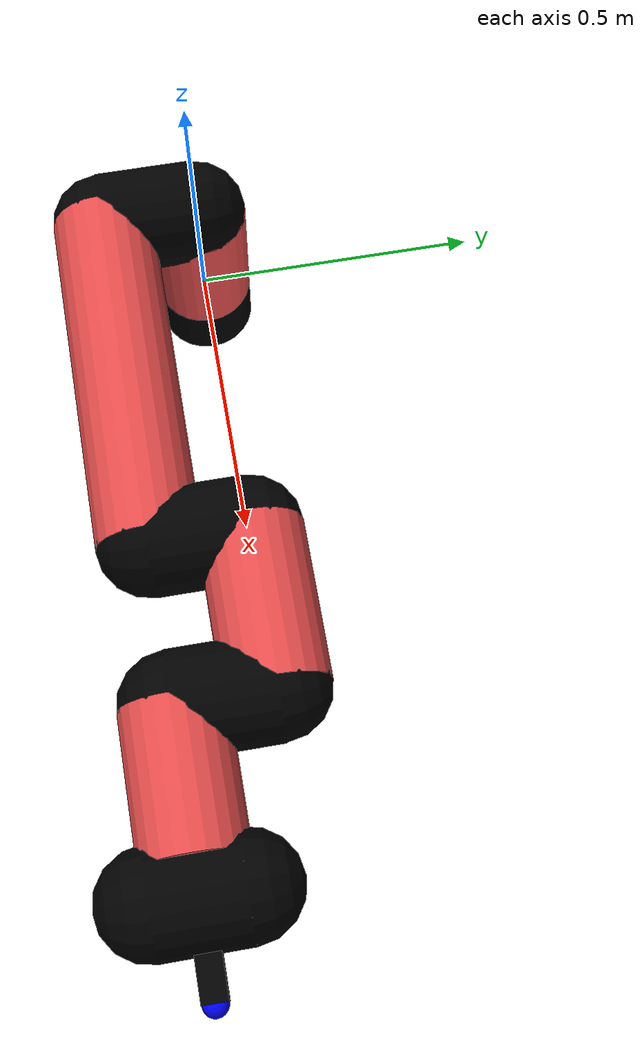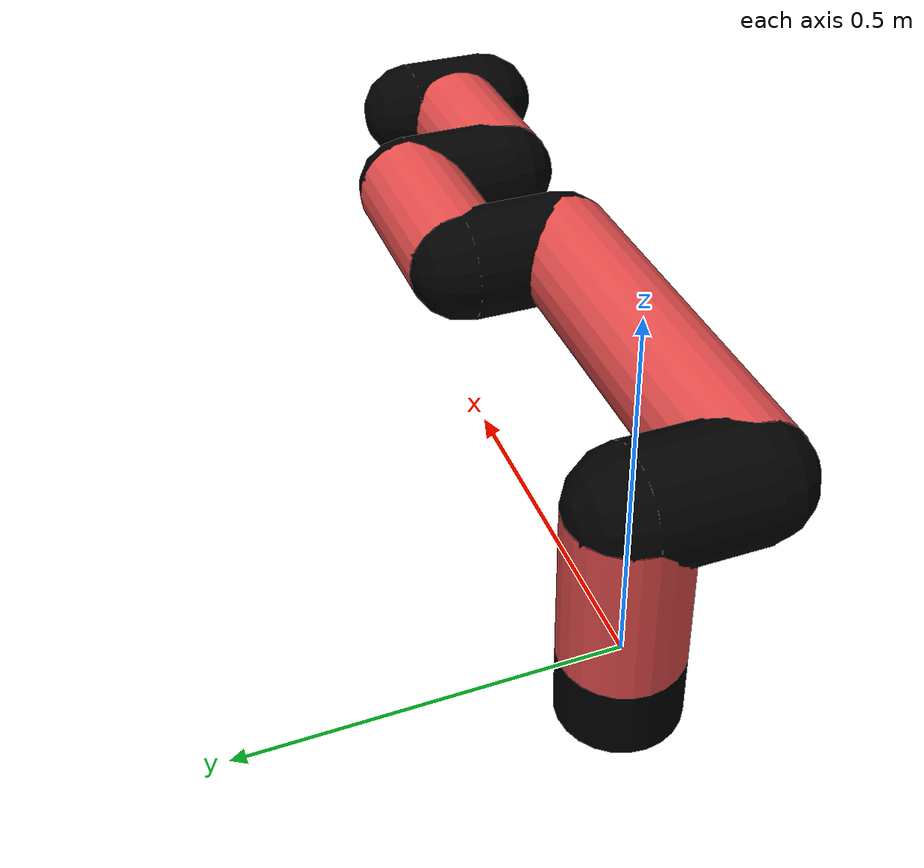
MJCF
<mujoco model="manipulator">
		<compiler angle="degree" coordinate="local" inertiafromgeom="auto" meshdir="meshes/"/>
		<option gravity="0 0 0" integrator="RK4" iterations="30" timestep="0.01"/>

		<default>
		<joint armature="1" limited="true" stiffness="10" damping="15" frictionloss="5.0"/>
		<geom conaffinity="1" condim="3" contype="1" friction=".5 .1 .1" margin="0.002"/>
		<motor ctrllimited="true"/>
		<position ctrllimited="true"/>
		</default>

		<asset>
		<texture builtin="gradient" height="100" rgb1="1.0 1.0 1.0" rgb2="1.0 1.0 1.0" type="skybox" width="100"/>
		<texture builtin="flat" height="32" name="arm_tex" rgb1="0.9 0.3 0.3" type="2d" width="32"/>
		<texture builtin="flat" height="32" name="gripper_tex" rgb1="0.0 0.0 0.0" type="cube" width="32"/>

		<material name="arm_mat" shininess="0.1" specular="0.1" texture="arm_tex"/>
		<material name="gripper_mat" shininess="1" specular="1" texture="gripper_tex"/>
		</asset>

		<worldbody>
		<light cutoff="45" diffuse=".8 .8 .8" dir="0 0.16 -1" directional="false" name="light" pos="0 -2.0 8.0" specular="0.3 0.3 0.3"/>

		<body name="base_link" pos="0 0 -0.1">
		<geom fromto="0 0 0 0 0 0.1" material="arm_mat" name="base_link" rgba="0.0 0.0 0.0 1" size="0.085" type="cylinder"/>
		</body>

		<body name="l1" pos="0 0 0">
<geom fromto="0 0 0 0 0 0.23" material="arm_mat" name="l1" rgba="0.9 0.3 0.3 1" size="0.085" type="cylinder"/>
<geom fromto="0 0 0.23 0 -0.16 0.23" material="arm_mat" name="l1_ex" rgba="0.0 0.0 0.0 1" size="0.085" type="capsule"/>
<joint axis="0 0 1" name="j1" pos="0 0 0" range="-90 90" damping="25.94" frictionloss="8.39"/>

<body name="l2" pos="0 -0.16 0.23">
<geom fromto="0 0 0 0.59 0 0" material="arm_mat" name="l2" rgba="0.9 0.3 0.3 1" size="0.085" type="cylinder"/>
<geom fromto="0.59 0 0 0.59 0.16 0" material="arm_mat" name="l2_ex" rgba="0.0 0.0 0.0 1" size="0.085" type="capsule"/>
<joint axis="0.23 1.08 0.06" name="j2" pos="0 0 0" range="-90 60" damping="34.48" frictionloss="11.49"/>

<body name="l3" pos="0.59 0.16 0">
<geom fromto="0 0 0 0.26 0 0" material="arm_mat" name="l3" rgba="0.9 0.3 0.3 1" size="0.085" type="cylinder"/>
<geom fromto="0.26 0 0 0.26 -0.16 0" material="arm_mat" name="l3_ex" rgba="0.0 0.0 0.0 1" size="0.085" type="capsule"/>
<joint axis="-0.19 1.22 -0.03" name="j3" pos="0 0 0" range="-30 60" damping="35.13" frictionloss="10.87"/>

<body name="l4" pos="0.26 -0.16 0">
<geom fromto="0 0 0 0.23 0 0" material="arm_mat" name="l4" rgba="0.9 0.3 0.3 1" size="0.085" type="cylinder"/>
<joint axis="0.04 0.95 -0.13" name="j4" pos="0 0 0" range="-30 60" damping="22.72" frictionloss="11.28"/>

<body name="gripper" pos="0.23 0 0">
<geom fromto="0.05 -0.07 0 0.05 0.07 0" material="gripper_mat" name="gripper" rgba="0.0 0.0 0.0 1" size="0.085" type="capsule"/><joint axis="1 0 0" name="j5" pos="0 0 0" range="-90 90" damping="15" frictionloss="5.0"/><body name="finger" pos="0.1 0 0">
<geom fromto="0 0.0 0 0.1 0.0 0" material="gripper_mat" name="finger" rgba="0.0 0.0 0.0 1" size="0.020 0.06 0.06" type="box"/>
</body>
<site name="current" pos="0.2 0. 0.0" rgba="0. 0. 1.0 1" size="0.02" type="sphere"/>
</body>
</body>
</body>
</body>
</body>
</worldbody>
<actuator>
<motor ctrllimited="true" ctrlrange="-1.0 1.0" joint="j1" gear="83.38"/>
<motor ctrllimited="true" ctrlrange="-1.0 1.0" joint="j2" gear="92.66"/>
<motor ctrllimited="true" ctrlrange="-1.0 1.0" joint="j3" gear="63.33"/>
<motor ctrllimited="true" ctrlrange="-1.0 1.0" joint="j4" gear="69.98"/>
<motor ctrllimited="true" ctrlrange="-1.0 1.0" joint="j5" gear="80"/>
</actuator>
</mujoco>
